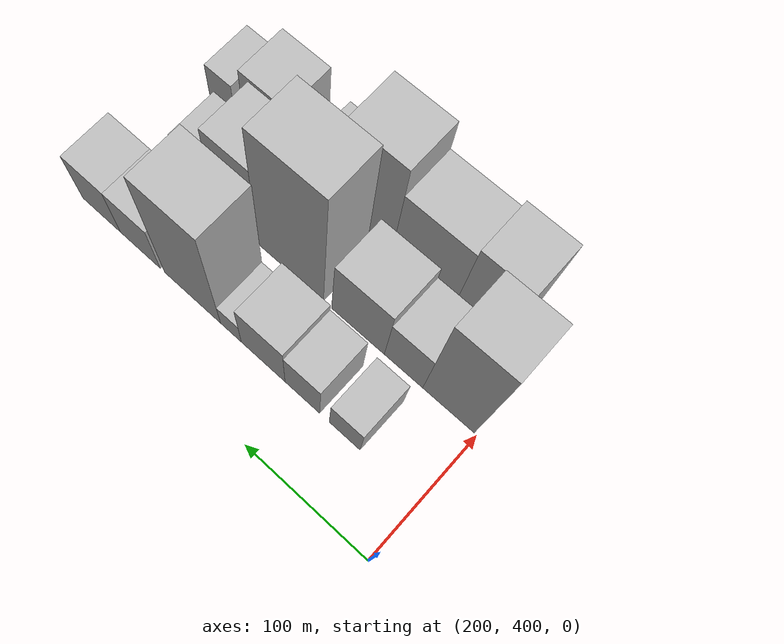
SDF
<sdf version="1.6">
 <world name="default">
  <model name="building_193">
   <static>1</static>
   <pose>265.0000 459.2048 0 0.000000 0.000000 0.000000</pose>
   <link name="link">
    <pose>0 0 22.50 0 0 0</pose>
    <collision name="collision"><geometry><box><size>40.0000 25.2868 45.0000</size></box></geometry></collision>
    <visual name="visual">
     <cast_shadows>0</cast_shadows>
     <geometry><box><size>40.0000 25.2868 45.0000</size></box></geometry>
     <material>
      <script>
       <uri>model://HANNAS_wall/materials/scripts</uri>
       <uri>model://HANNAS_wall/materials/textures</uri>
       <name>vrc/HANNAS_wall</name>
      </script>
     </material>
    </visual>
   </link>
  </model>
  <model name="building_194">
   <static>1</static>
   <pose>265.0000 494.3820 0 0.000000 0.000000 0.000000</pose>
   <link name="link">
    <pose>0 0 28.50 0 0 0</pose>
    <collision name="collision"><geometry><box><size>40.0000 29.0676 57.0000</size></box></geometry></collision>
    <visual name="visual">
     <cast_shadows>0</cast_shadows>
     <geometry><box><size>40.0000 29.0676 57.0000</size></box></geometry>
     <material>
      <script>
       <uri>model://HANNAS_wall/materials/scripts</uri>
       <uri>model://HANNAS_wall/materials/textures</uri>
       <name>vrc/HANNAS_wall</name>
      </script>
     </material>
    </visual>
   </link>
  </model>
  <model name="building_195">
   <static>1</static>
   <pose>265.0000 527.7412 0 0.000000 0.000000 0.000000</pose>
   <link name="link">
    <pose>0 0 33.00 0 0 0</pose>
    <collision name="collision"><geometry><box><size>40.0000 37.6508 66.0000</size></box></geometry></collision>
    <visual name="visual">
     <cast_shadows>0</cast_shadows>
     <geometry><box><size>40.0000 37.6508 66.0000</size></box></geometry>
     <material>
      <script>
       <uri>model://HANNAS_wall/materials/scripts</uri>
       <uri>model://HANNAS_wall/materials/textures</uri>
       <name>vrc/HANNAS_wall</name>
      </script>
     </material>
    </visual>
   </link>
  </model>
  <model name="building_196">
   <static>1</static>
   <pose>265.0000 555.6665 0 0.000000 0.000000 0.000000</pose>
   <link name="link">
    <pose>0 0 16.50 0 0 0</pose>
    <collision name="collision"><geometry><box><size>40.0000 18.1998 33.0000</size></box></geometry></collision>
    <visual name="visual">
     <cast_shadows>0</cast_shadows>
     <geometry><box><size>40.0000 18.1998 33.0000</size></box></geometry>
     <material>
      <script>
       <uri>model://HANNAS_wall/materials/scripts</uri>
       <uri>model://HANNAS_wall/materials/textures</uri>
       <name>vrc/HANNAS_wall</name>
      </script>
     </material>
    </visual>
   </link>
  </model>
  <model name="building_197">
   <static>1</static>
   <pose>265.0000 589.9989 0 0.000000 0.000000 0.000000</pose>
   <link name="link">
    <pose>0 0 73.50 0 0 0</pose>
    <collision name="collision"><geometry><box><size>40.0000 50.4650 147.0000</size></box></geometry></collision>
    <visual name="visual">
     <cast_shadows>0</cast_shadows>
     <geometry><box><size>40.0000 50.4650 147.0000</size></box></geometry>
     <material>
      <script>
       <uri>model://HANNAS_wall/materials/scripts</uri>
       <uri>model://HANNAS_wall/materials/textures</uri>
       <name>vrc/HANNAS_wall</name>
      </script>
     </material>
    </visual>
   </link>
  </model>
  <model name="building_198">
   <static>1</static>
   <pose>265.0000 637.6387 0 0.000000 0.000000 0.000000</pose>
   <link name="link">
    <pose>0 0 31.50 0 0 0</pose>
    <collision name="collision"><geometry><box><size>40.0000 36.8145 63.0000</size></box></geometry></collision>
    <visual name="visual">
     <cast_shadows>0</cast_shadows>
     <geometry><box><size>40.0000 36.8145 63.0000</size></box></geometry>
     <material>
      <script>
       <uri>model://HANNAS_wall/materials/scripts</uri>
       <uri>model://HANNAS_wall/materials/textures</uri>
       <name>vrc/HANNAS_wall</name>
      </script>
     </material>
    </visual>
   </link>
  </model>
  <model name="building_199">
   <static>1</static>
   <pose>265.0000 674.1736 0 0.000000 0.000000 0.000000</pose>
   <link name="link">
    <pose>0 0 31.50 0 0 0</pose>
    <collision name="collision"><geometry><box><size>40.0000 36.2553 63.0000</size></box></geometry></collision>
    <visual name="visual">
     <cast_shadows>0</cast_shadows>
     <geometry><box><size>40.0000 36.2553 63.0000</size></box></geometry>
     <material>
      <script>
       <uri>model://HANNAS_wall/materials/scripts</uri>
       <uri>model://HANNAS_wall/materials/textures</uri>
       <name>vrc/HANNAS_wall</name>
      </script>
     </material>
    </visual>
   </link>
  </model>
  <model name="building_243">
   <static>1</static>
   <pose>320.0000 422.7716 0 0.000000 0.000000 0.000000</pose>
   <link name="link">
    <pose>0 0 69.00 0 0 0</pose>
    <collision name="collision"><geometry><box><size>40.0000 41.4136 138.0000</size></box></geometry></collision>
    <visual name="visual">
     <cast_shadows>0</cast_shadows>
     <geometry><box><size>40.0000 41.4136 138.0000</size></box></geometry>
     <material>
      <script>
       <uri>model://HANNAS_wall/materials/scripts</uri>
       <uri>model://HANNAS_wall/materials/textures</uri>
       <name>vrc/HANNAS_wall</name>
      </script>
     </material>
    </visual>
   </link>
  </model>
  <model name="building_244">
   <static>1</static>
   <pose>320.0000 459.3075 0 0.000000 0.000000 0.000000</pose>
   <link name="link">
    <pose>0 0 31.50 0 0 0</pose>
    <collision name="collision"><geometry><box><size>40.0000 31.6582 63.0000</size></box></geometry></collision>
    <visual name="visual">
     <cast_shadows>0</cast_shadows>
     <geometry><box><size>40.0000 31.6582 63.0000</size></box></geometry>
     <material>
      <script>
       <uri>model://HANNAS_wall/materials/scripts</uri>
       <uri>model://HANNAS_wall/materials/textures</uri>
       <name>vrc/HANNAS_wall</name>
      </script>
     </material>
    </visual>
   </link>
  </model>
  <model name="building_245">
   <static>1</static>
   <pose>320.0000 497.4393 0 0.000000 0.000000 0.000000</pose>
   <link name="link">
    <pose>0 0 39.00 0 0 0</pose>
    <collision name="collision"><geometry><box><size>40.0000 44.6054 78.0000</size></box></geometry></collision>
    <visual name="visual">
     <cast_shadows>0</cast_shadows>
     <geometry><box><size>40.0000 44.6054 78.0000</size></box></geometry>
     <material>
      <script>
       <uri>model://HANNAS_wall/materials/scripts</uri>
       <uri>model://HANNAS_wall/materials/textures</uri>
       <name>vrc/HANNAS_wall</name>
      </script>
     </material>
    </visual>
   </link>
  </model>
  <model name="building_246">
   <static>1</static>
   <pose>320.0000 555.5711 0 0.000000 0.000000 0.000000</pose>
   <link name="link">
    <pose>0 0 81.00 0 0 0</pose>
    <collision name="collision"><geometry><box><size>40.0000 57.6582 162.0000</size></box></geometry></collision>
    <visual name="visual">
     <cast_shadows>0</cast_shadows>
     <geometry><box><size>40.0000 57.6582 162.0000</size></box></geometry>
     <material>
      <script>
       <uri>model://HANNAS_wall/materials/scripts</uri>
       <uri>model://HANNAS_wall/materials/textures</uri>
       <name>vrc/HANNAS_wall</name>
      </script>
     </material>
    </visual>
   </link>
  </model>
  <model name="building_247">
   <static>1</static>
   <pose>320.0000 603.5919 0 0.000000 0.000000 0.000000</pose>
   <link name="link">
    <pose>0 0 55.50 0 0 0</pose>
    <collision name="collision"><geometry><box><size>40.0000 38.3833 111.0000</size></box></geometry></collision>
    <visual name="visual">
     <cast_shadows>0</cast_shadows>
     <geometry><box><size>40.0000 38.3833 111.0000</size></box></geometry>
     <material>
      <script>
       <uri>model://HANNAS_wall/materials/scripts</uri>
       <uri>model://HANNAS_wall/materials/textures</uri>
       <name>vrc/HANNAS_wall</name>
      </script>
     </material>
    </visual>
   </link>
  </model>
  <model name="building_248">
   <static>1</static>
   <pose>320.0000 639.5264 0 0.000000 0.000000 0.000000</pose>
   <link name="link">
    <pose>0 0 30.00 0 0 0</pose>
    <collision name="collision"><geometry><box><size>40.0000 33.4858 60.0000</size></box></geometry></collision>
    <visual name="visual">
     <cast_shadows>0</cast_shadows>
     <geometry><box><size>40.0000 33.4858 60.0000</size></box></geometry>
     <material>
      <script>
       <uri>model://HANNAS_wall/materials/scripts</uri>
       <uri>model://HANNAS_wall/materials/textures</uri>
       <name>vrc/HANNAS_wall</name>
      </script>
     </material>
    </visual>
   </link>
  </model>
  <model name="building_297">
   <static>1</static>
   <pose>375.0000 444.0732 0 0.000000 0.000000 0.000000</pose>
   <link name="link">
    <pose>0 0 49.50 0 0 0</pose>
    <collision name="collision"><geometry><box><size>40.0000 38.8435 99.0000</size></box></geometry></collision>
    <visual name="visual">
     <cast_shadows>0</cast_shadows>
     <geometry><box><size>40.0000 38.8435 99.0000</size></box></geometry>
     <material>
      <script>
       <uri>model://HANNAS_wall/materials/scripts</uri>
       <uri>model://HANNAS_wall/materials/textures</uri>
       <name>vrc/HANNAS_wall</name>
      </script>
     </material>
    </visual>
   </link>
  </model>
  <model name="building_298">
   <static>1</static>
   <pose>375.0000 490.0580 0 0.000000 0.000000 0.000000</pose>
   <link name="link">
    <pose>0 0 45.00 0 0 0</pose>
    <collision name="collision"><geometry><box><size>40.0000 53.1262 90.0000</size></box></geometry></collision>
    <visual name="visual">
     <cast_shadows>0</cast_shadows>
     <geometry><box><size>40.0000 53.1262 90.0000</size></box></geometry>
     <material>
      <script>
       <uri>model://HANNAS_wall/materials/scripts</uri>
       <uri>model://HANNAS_wall/materials/textures</uri>
       <name>vrc/HANNAS_wall</name>
      </script>
     </material>
    </visual>
   </link>
  </model>
  <model name="building_299">
   <static>1</static>
   <pose>375.0000 539.5988 0 0.000000 0.000000 0.000000</pose>
   <link name="link">
    <pose>0 0 61.50 0 0 0</pose>
    <collision name="collision"><geometry><box><size>40.0000 45.9555 123.0000</size></box></geometry></collision>
    <visual name="visual">
     <cast_shadows>0</cast_shadows>
     <geometry><box><size>40.0000 45.9555 123.0000</size></box></geometry>
     <material>
      <script>
       <uri>model://HANNAS_wall/materials/scripts</uri>
       <uri>model://HANNAS_wall/materials/textures</uri>
       <name>vrc/HANNAS_wall</name>
      </script>
     </material>
    </visual>
   </link>
  </model>
  <model name="building_300">
   <static>1</static>
   <pose>375.0000 577.0294 0 0.000000 0.000000 0.000000</pose>
   <link name="link">
    <pose>0 0 27.00 0 0 0</pose>
    <collision name="collision"><geometry><box><size>40.0000 28.9058 54.0000</size></box></geometry></collision>
    <visual name="visual">
     <cast_shadows>0</cast_shadows>
     <geometry><box><size>40.0000 28.9058 54.0000</size></box></geometry>
     <material>
      <script>
       <uri>model://HANNAS_wall/materials/scripts</uri>
       <uri>model://HANNAS_wall/materials/textures</uri>
       <name>vrc/HANNAS_wall</name>
      </script>
     </material>
    </visual>
   </link>
  </model>
  <model name="building_301">
   <static>1</static>
   <pose>375.0000 604.3785 0 0.000000 0.000000 0.000000</pose>
   <link name="link">
    <pose>0 0 9.00 0 0 0</pose>
    <collision name="collision"><geometry><box><size>40.0000 7.7924 18.0000</size></box></geometry></collision>
    <visual name="visual">
     <cast_shadows>0</cast_shadows>
     <geometry><box><size>40.0000 7.7924 18.0000</size></box></geometry>
     <material>
      <script>
       <uri>model://HANNAS_wall/materials/scripts</uri>
       <uri>model://HANNAS_wall/materials/textures</uri>
       <name>vrc/HANNAS_wall</name>
      </script>
     </material>
    </visual>
   </link>
  </model>
  <model name="building_302">
   <static>1</static>
   <pose>375.0000 628.6016 0 0.000000 0.000000 0.000000</pose>
   <link name="link">
    <pose>0 0 37.50 0 0 0</pose>
    <collision name="collision"><geometry><box><size>40.0000 40.6536 75.0000</size></box></geometry></collision>
    <visual name="visual">
     <cast_shadows>0</cast_shadows>
     <geometry><box><size>40.0000 40.6536 75.0000</size></box></geometry>
     <material>
      <script>
       <uri>model://HANNAS_wall/materials/scripts</uri>
       <uri>model://HANNAS_wall/materials/textures</uri>
       <name>vrc/HANNAS_wall</name>
      </script>
     </material>
    </visual>
   </link>
  </model>
  <model name="building_303">
   <static>1</static>
   <pose>375.0000 669.8355 0 0.000000 0.000000 0.000000</pose>
   <link name="link">
    <pose>0 0 22.50 0 0 0</pose>
    <collision name="collision"><geometry><box><size>40.0000 23.8142 45.0000</size></box></geometry></collision>
    <visual name="visual">
     <cast_shadows>0</cast_shadows>
     <geometry><box><size>40.0000 23.8142 45.0000</size></box></geometry>
     <material>
      <script>
       <uri>model://HANNAS_wall/materials/scripts</uri>
       <uri>model://HANNAS_wall/materials/textures</uri>
       <name>vrc/HANNAS_wall</name>
      </script>
     </material>
    </visual>
   </link>
  </model>
 </world>
</sdf>
